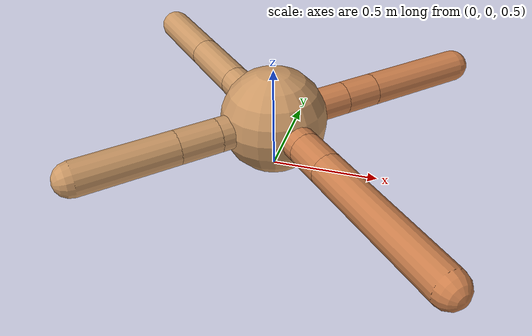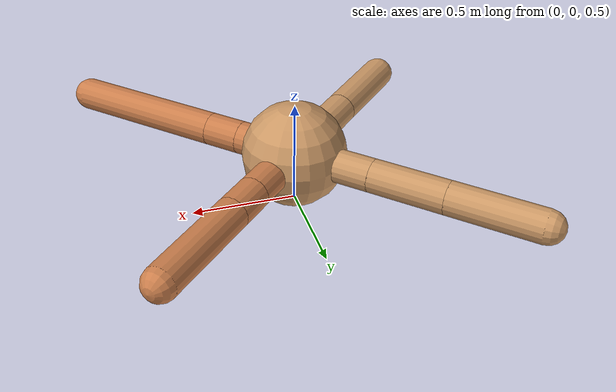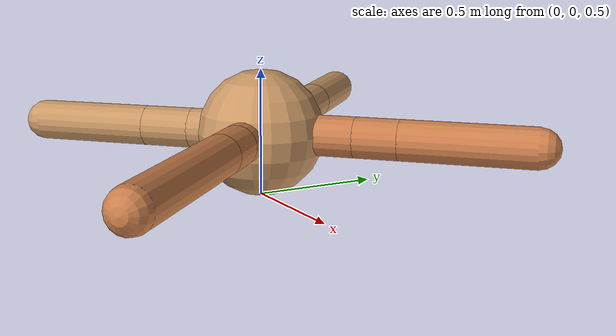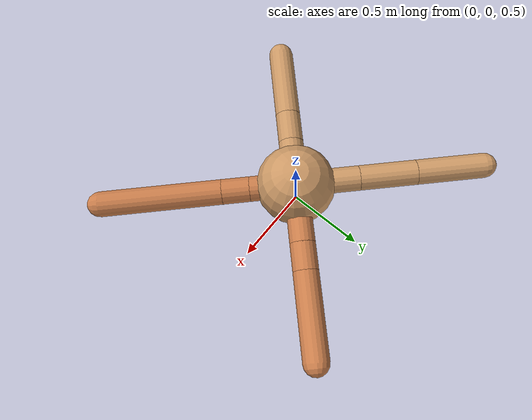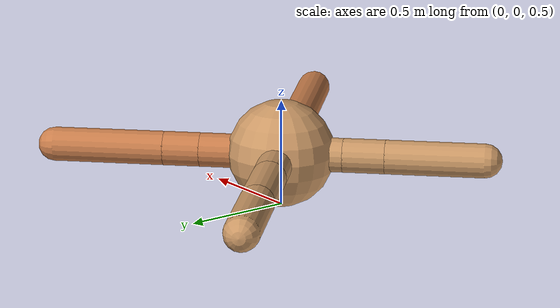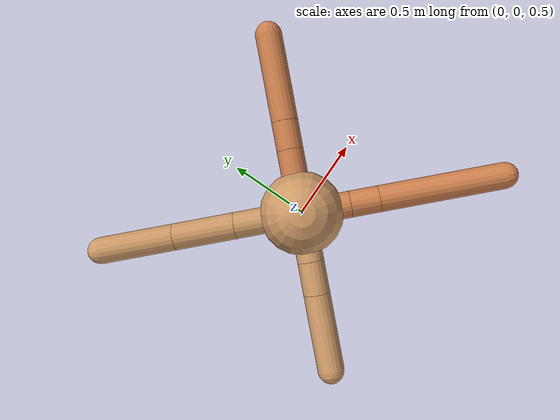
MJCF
<mujoco model="ant">
  <compiler angle="degree" coordinate="local" inertiafromgeom="true" />
  <option integrator="RK4" timestep="0.01" />
  <custom>
    <numeric data="0.0 0.0 0.55 1.0 0.0 0.0 0.0 0.0 1.0 0.0 -1.0 0.0 -1.0 0.0 1.0" name="init_qpos" />
  </custom>
  <default>
    <joint armature="1" damping="1" limited="true" />
    <geom conaffinity="0" condim="3" density="5.0" friction="1.5 0.1 0.1" margin="0.01" rgba="0.8 0.6 0.4 1" />
  </default>
  <worldbody>
    <body name="torso" pos="0 0 0.75">
      <geom name="torso_geom" pos="0 0 0" size="0.25" type="sphere" />

      <body name="front_left_leg" pos="0 0 0">
        <geom fromto="0.0 0.0 0.0 0.2682410028429269 0.2682410028429269 0.0" name="aux_1_geom" size="0.08" type="capsule" rgba=".8 .5 .3 1" />
        <body name="aux_1" pos="0.2682410028429269 0.2682410028429269 0.0">
          <joint axis="0 0 1" name="hip_1" pos="0.0 0.0 0.0" range="-40 40" type="hinge" />
          <geom fromto="0.0 0.0 0.0 0.12160964387123244 0.12160964387123244 0.0" name="left_leg_geom" size="0.08" type="capsule" rgba=".8 .5 .3 1" />
          <body pos="0.12160964387123244 0.12160964387123244 0.0" name="front_left_foot">
            <joint axis="-1 1 0" name="ankle_1" pos="0.0 0.0 0.0" range="30 100" type="hinge" />
            <geom fromto="0.0 0.0 0.0 0.36766134983687115 0.36766134983687115 0.0" name="left_ankle_geom" size="0.08" type="capsule" rgba=".8 .5 .3 1" />
          </body>
        </body>
      </body>
      <body name="front_right_leg" pos="0 0 0">
        <geom fromto="0.0 0.0 0.0 -0.2845404232890127 0.2845404232890127 0.0" name="aux_2_geom" size="0.08" type="capsule" />
        <body name="aux_2" pos="-0.2845404232890127 0.2845404232890127 0.0">
          <joint axis="0 0 1" name="hip_2" pos="0.0 0.0 0.0" range="-40 40" type="hinge" />
          <geom fromto="0.0 0.0 0.0 -0.2568026307875834 0.2568026307875834 0.0" name="right_leg_geom" size="0.08" type="capsule" />
          <body pos="-0.2568026307875834 0.2568026307875834 0.0" name="front_right_foot">
            <joint axis="1 1 0" name="ankle_2" pos="0.0 0.0 0.0" range="-100 -30" type="hinge" />
            <geom fromto="0.0 0.0 0.0 -0.30947985650470167 0.30947985650470167 0.0" name="right_ankle_geom" size="0.08" type="capsule" />
          </body>
        </body>
      </body>
      <body name="left_back_leg" pos="0 0 0">
        <geom fromto="0.0 0.0 0.0 -0.2040286596635651 -0.2040286596635651 0.0" name="aux_3_geom" size="0.08" type="capsule" />
        <body name="aux_3" pos="-0.2040286596635651 -0.2040286596635651 0.0">
          <joint axis="0 0 1" name="hip_3" pos="0.0 0.0 0.0" range="-40 40" type="hinge" />
          <geom fromto="0.0 0.0 0.0 -0.13824639499786112 -0.13824639499786112 0.0" name="back_leg_geom" size="0.08" type="capsule" />
          <body pos="-0.13824639499786112 -0.13824639499786112 0.0" name="left_back_foot">
            <joint axis="-1 1 0" name="ankle_3" pos="0.0 0.0 0.0" range="-100 -30" type="hinge" />
            <geom fromto="0.0 0.0 0.0 -0.32534193886823987 -0.32534193886823987 0.0" name="third_ankle_geom" size="0.08" type="capsule" />
          </body>
        </body>
      </body>
      <body name="right_back_leg" pos="0 0 0">
        <geom fromto="0.0 0.0 0.0 0.20501581938566427 -0.20501581938566427 0.0" name="aux_4_geom" size="0.08" type="capsule" rgba=".8 .5 .3 1" />
        <body name="aux_4" pos="0.20501581938566427 -0.20501581938566427 0.0">
          <joint axis="0 0 1" name="hip_4" pos="0.0 0.0 0.0" range="-40 40" type="hinge" />
          <geom fromto="0.0 0.0 0.0 0.12189240075004788 -0.12189240075004788 0.0" name="rightback_leg_geom" size="0.08" type="capsule" rgba=".8 .5 .3 1" />
          <body pos="0.12189240075004788 -0.12189240075004788 0.0" name="right_back_foot">
            <joint axis="1 1 0" name="ankle_4" pos="0.0 0.0 0.0" range="30 100" type="hinge" />
            <geom fromto="0.0 0.0 0.0 0.5350161837260482 -0.5350161837260482 0.0" name="fourth_ankle_geom" size="0.08" type="capsule" rgba=".8 .5 .3 1" />
          </body>
        </body>
      </body>
    </body>
  </worldbody>
  <actuator>
    <motor ctrllimited="true" ctrlrange="-1.0 1.0" joint="hip_4" gear="150" />
    <motor ctrllimited="true" ctrlrange="-1.0 1.0" joint="ankle_4" gear="150" />
    <motor ctrllimited="true" ctrlrange="-1.0 1.0" joint="hip_1" gear="150" />
    <motor ctrllimited="true" ctrlrange="-1.0 1.0" joint="ankle_1" gear="150" />
    <motor ctrllimited="true" ctrlrange="-1.0 1.0" joint="hip_2" gear="150" />
    <motor ctrllimited="true" ctrlrange="-1.0 1.0" joint="ankle_2" gear="150" />
    <motor ctrllimited="true" ctrlrange="-1.0 1.0" joint="hip_3" gear="150" />
    <motor ctrllimited="true" ctrlrange="-1.0 1.0" joint="ankle_3" gear="150" />
  </actuator>
</mujoco>
